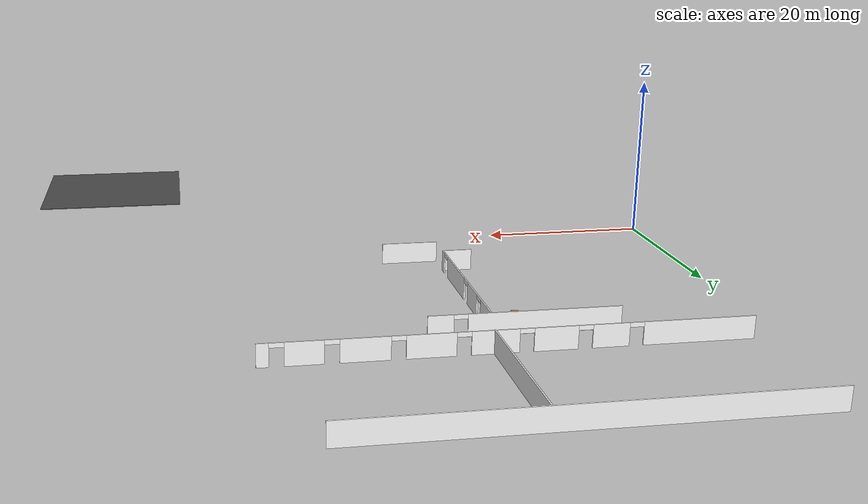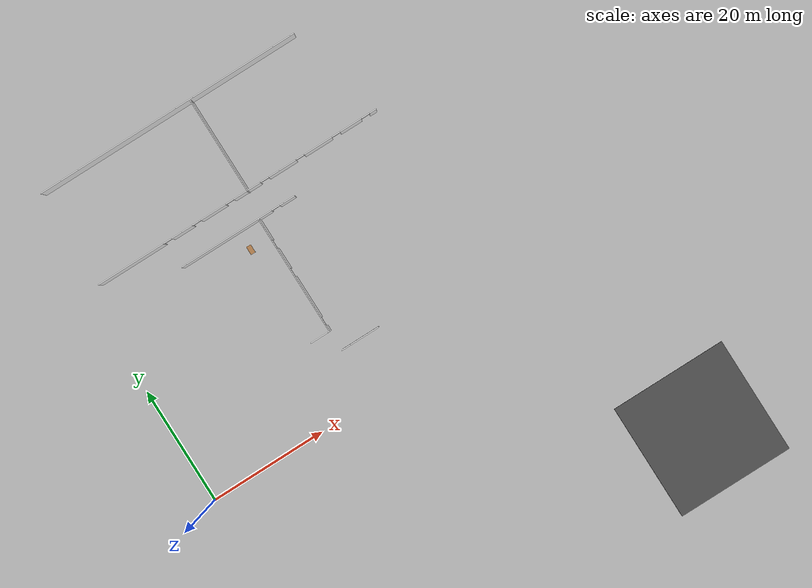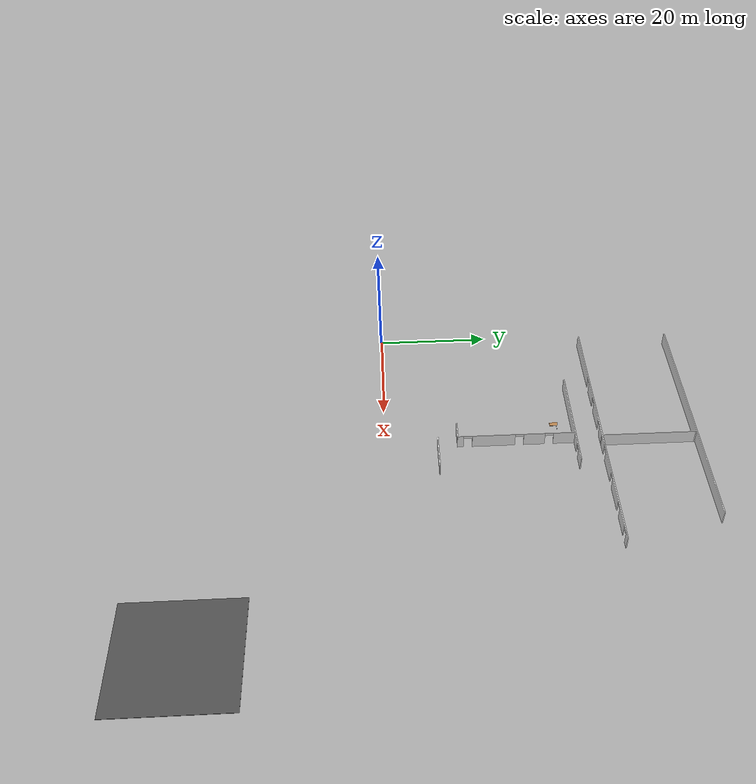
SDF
<sdf version="1.6">
 <world name="default">
  <model name="mainoffice">
   <pose>42.7555 15.4488 0 0 -0 0</pose>
   <link name="Wall_114">
    <pose>-14.0456 22.5815 0 0 -0 0</pose>
    <visual name="Wall_114_Visual_0">
     <pose>-19.5315 0 1.25 0 -0 0</pose>
     <geometry><box><size>11.937 0.15 2.5</size></box></geometry>
     <material>
      <script>
       <uri>model://office_env/materials/scripts</uri>
       <uri>model://office_env/materials/textures</uri>
       <name>wall</name>
      </script>
      <ambient>1 1 1 1</ambient>
     </material>
    </visual>
    <collision name="Wall_114_Collision_0">
     <geometry><box><size>11.937 0.15 2.5</size></box></geometry>
     <pose>-19.5315 0 1.25 0 -0 0</pose>
    </collision>
    <visual name="Wall_114_Visual_1">
     <pose>-10.1461 0 1.25 0 -0 0</pose>
     <geometry><box><size>3.83377 0.15 2.5</size></box></geometry>
     <material>
      <script>
       <uri>model://office_env/materials/scripts</uri>
       <uri>model://office_env/materials/textures</uri>
       <name>wall</name>
      </script>
      <ambient>1 1 1 1</ambient>
     </material>
    </visual>
    <collision name="Wall_114_Collision_1">
     <geometry><box><size>3.83377 0.15 2.5</size></box></geometry>
     <pose>-10.1461 0 1.25 0 -0 0</pose>
    </collision>
    <visual name="Wall_114_Visual_2">
     <pose>-4.44505 0 1.25 0 -0 0</pose>
     <geometry><box><size>4.56834 0.15 2.5</size></box></geometry>
     <material>
      <script>
       <uri>model://office_env/materials/scripts</uri>
       <uri>model://office_env/materials/textures</uri>
       <name>wall</name>
      </script>
      <ambient>1 1 1 1</ambient>
     </material>
    </visual>
    <collision name="Wall_114_Collision_2">
     <geometry><box><size>4.56834 0.15 2.5</size></box></geometry>
     <pose>-4.44505 0 1.25 0 -0 0</pose>
    </collision>
    <visual name="Wall_114_Visual_3">
     <pose>1.7851 0 1.25 0 -0 0</pose>
     <geometry><box><size>4.89198 0.15 2.5</size></box></geometry>
     <material>
      <script>
       <uri>model://office_env/materials/scripts</uri>
       <uri>model://office_env/materials/textures</uri>
       <name>wall</name>
      </script>
      <ambient>1 1 1 1</ambient>
     </material>
    </visual>
    <collision name="Wall_114_Collision_3">
     <geometry><box><size>4.89198 0.15 2.5</size></box></geometry>
     <pose>1.7851 0 1.25 0 -0 0</pose>
    </collision>
    <visual name="Wall_114_Visual_4">
     <pose>8.258 0 1.25 0 -0 0</pose>
     <geometry><box><size>5.0538 0.15 2.5</size></box></geometry>
     <material>
      <script>
       <uri>model://office_env/materials/scripts</uri>
       <uri>model://office_env/materials/textures</uri>
       <name>wall</name>
      </script>
      <ambient>1 1 1 1</ambient>
     </material>
    </visual>
    <collision name="Wall_114_Collision_4">
     <geometry><box><size>5.0538 0.15 2.5</size></box></geometry>
     <pose>8.258 0 1.25 0 -0 0</pose>
    </collision>
    <visual name="Wall_114_Visual_5">
     <pose>14.8201 0 1.25 0 -0 0</pose>
     <geometry><box><size>5.07045 0.15 2.5</size></box></geometry>
     <material>
      <script>
       <uri>model://office_env/materials/scripts</uri>
       <uri>model://office_env/materials/textures</uri>
       <name>wall</name>
      </script>
      <ambient>1 1 1 1</ambient>
     </material>
    </visual>
    <collision name="Wall_114_Collision_5">
     <geometry><box><size>5.07045 0.15 2.5</size></box></geometry>
     <pose>14.8201 0 1.25 0 -0 0</pose>
    </collision>
    <visual name="Wall_114_Visual_6">
     <pose>20.8037 0 1.25 0 -0 0</pose>
     <geometry><box><size>3.89677 0.15 2.5</size></box></geometry>
     <material>
      <script>
       <uri>model://office_env/materials/scripts</uri>
       <uri>model://office_env/materials/textures</uri>
       <name>wall</name>
      </script>
      <ambient>1 1 1 1</ambient>
     </material>
    </visual>
    <collision name="Wall_114_Collision_6">
     <geometry><box><size>3.89677 0.15 2.5</size></box></geometry>
     <pose>20.8037 0 1.25 0 -0 0</pose>
    </collision>
    <visual name="Wall_114_Visual_7">
     <pose>24.8761 0 1.25 0 -0 0</pose>
     <geometry><box><size>1.24787 0.15 2.5</size></box></geometry>
     <material>
      <script>
       <uri>model://office_env/materials/scripts</uri>
       <uri>model://office_env/materials/textures</uri>
       <name>wall</name>
      </script>
      <ambient>1 1 1 1</ambient>
     </material>
    </visual>
    <collision name="Wall_114_Collision_7">
     <geometry><box><size>1.24787 0.15 2.5</size></box></geometry>
     <pose>24.8761 0 1.25 0 -0 0</pose>
    </collision>
    <visual name="Wall_114_Visual_8">
     <pose>-12.813 0 2.25 0 -0 0</pose>
     <geometry><box><size>1.5 0.15 0.5</size></box></geometry>
     <material>
      <script>
       <uri>model://office_env/materials/scripts</uri>
       <uri>model://office_env/materials/textures</uri>
       <name>wall</name>
      </script>
      <ambient>1 1 1 1</ambient>
     </material>
    </visual>
    <collision name="Wall_114_Collision_8">
     <geometry><box><size>1.5 0.15 0.5</size></box></geometry>
     <pose>-12.813 0 2.25 0 -0 0</pose>
    </collision>
    <visual name="Wall_114_Visual_9">
     <pose>-7.47922 0 2.25 0 -0 0</pose>
     <geometry><box><size>1.5 0.15 0.5</size></box></geometry>
     <material>
      <script>
       <uri>model://office_env/materials/scripts</uri>
       <uri>model://office_env/materials/textures</uri>
       <name>wall</name>
      </script>
      <ambient>1 1 1 1</ambient>
     </material>
    </visual>
    <collision name="Wall_114_Collision_9">
     <geometry><box><size>1.5 0.15 0.5</size></box></geometry>
     <pose>-7.47922 0 2.25 0 -0 0</pose>
    </collision>
    <visual name="Wall_114_Visual_10">
     <pose>-1.41089 0 2.25 0 -0 0</pose>
     <geometry><box><size>1.5 0.15 0.5</size></box></geometry>
     <material>
      <script>
       <uri>model://office_env/materials/scripts</uri>
       <uri>model://office_env/materials/textures</uri>
       <name>wall</name>
      </script>
      <ambient>1 1 1 1</ambient>
     </material>
    </visual>
    <collision name="Wall_114_Collision_10">
     <geometry><box><size>1.5 0.15 0.5</size></box></geometry>
     <pose>-1.41089 0 2.25 0 -0 0</pose>
    </collision>
    <visual name="Wall_114_Visual_11">
     <pose>4.98109 0 2.25 0 -0 0</pose>
     <geometry><box><size>1.5 0.15 0.5</size></box></geometry>
     <material>
      <script>
       <uri>model://office_env/materials/scripts</uri>
       <uri>model://office_env/materials/textures</uri>
       <name>wall</name>
      </script>
      <ambient>1 1 1 1</ambient>
     </material>
    </visual>
    <collision name="Wall_114_Collision_11">
     <geometry><box><size>1.5 0.15 0.5</size></box></geometry>
     <pose>4.98109 0 2.25 0 -0 0</pose>
    </collision>
    <visual name="Wall_114_Visual_12">
     <pose>11.5349 0 2.25 0 -0 0</pose>
     <geometry><box><size>1.5 0.15 0.5</size></box></geometry>
     <material>
      <script>
       <uri>model://office_env/materials/scripts</uri>
       <uri>model://office_env/materials/textures</uri>
       <name>wall</name>
      </script>
      <ambient>1 1 1 1</ambient>
     </material>
    </visual>
    <collision name="Wall_114_Collision_12">
     <geometry><box><size>1.5 0.15 0.5</size></box></geometry>
     <pose>11.5349 0 2.25 0 -0 0</pose>
    </collision>
    <visual name="Wall_114_Visual_13">
     <pose>18.1054 0 2.25 0 -0 0</pose>
     <geometry><box><size>1.5 0.15 0.5</size></box></geometry>
     <material>
      <script>
       <uri>model://office_env/materials/scripts</uri>
       <uri>model://office_env/materials/textures</uri>
       <name>wall</name>
      </script>
      <ambient>1 1 1 1</ambient>
     </material>
    </visual>
    <collision name="Wall_114_Collision_13">
     <geometry><box><size>1.5 0.15 0.5</size></box></geometry>
     <pose>18.1054 0 2.25 0 -0 0</pose>
    </collision>
    <visual name="Wall_114_Visual_14">
     <pose>23.5021 0 2.25 0 -0 0</pose>
     <geometry><box><size>1.5 0.15 0.5</size></box></geometry>
     <material>
      <script>
       <uri>model://office_env/materials/scripts</uri>
       <uri>model://office_env/materials/textures</uri>
       <name>wall</name>
      </script>
      <ambient>1 1 1 1</ambient>
     </material>
    </visual>
    <collision name="Wall_114_Collision_14">
     <geometry><box><size>1.5 0.15 0.5</size></box></geometry>
     <pose>23.5021 0 2.25 0 -0 0</pose>
    </collision>
   </link>
   <link name="Wall_140">
    <collision name="Wall_140_Collision">
     <geometry><box><size>16.75 0.15 2.5</size></box></geometry>
     <pose>0 0 1.25 0 -0 0</pose>
    </collision>
    <visual name="Wall_140_Visual">
     <pose>0 0 1.25 0 -0 0</pose>
     <geometry><box><size>16.75 0.15 2.5</size></box></geometry>
     <material>
      <script>
       <uri>model://office_env/materials/scripts</uri>
       <uri>model://office_env/materials/textures</uri>
       <name>wall</name>
      </script>
      <ambient>1 1 1 1</ambient>
     </material>
    </visual>
    <pose>-12.1935 30.816 0 0 -0 1.5708</pose>
   </link>
   <link name="Wall_141">
    <collision name="Wall_141_Collision">
     <geometry><box><size>0.25 0.15 2.5</size></box></geometry>
     <pose>0 0 1.25 0 -0 0</pose>
    </collision>
    <visual name="Wall_141_Visual">
     <pose>0 0 1.25 0 -0 0</pose>
     <geometry><box><size>0.25 0.15 2.5</size></box></geometry>
     <material>
      <script>
       <uri>model://office_env/materials/scripts</uri>
       <uri>model://office_env/materials/textures</uri>
       <name>wall</name>
      </script>
      <ambient>1 1 1 1</ambient>
     </material>
    </visual>
    <pose>-12.1935 39.166 0 0 -0 1.5708</pose>
   </link>
   <link name="Wall_38">
    <collision name="Wall_38_Collision">
     <geometry><box><size>46.5 0.15 2.5</size></box></geometry>
     <pose>0 0 1.25 0 -0 0</pose>
    </collision>
    <visual name="Wall_38_Visual">
     <pose>0 0 1.25 0 -0 0</pose>
     <geometry><box><size>46.5 0.15 2.5</size></box></geometry>
     <material>
      <script>
       <uri>model://office_env/materials/scripts</uri>
       <uri>model://office_env/materials/textures</uri>
       <name>wall</name>
      </script>
      <ambient>1 1 1 1</ambient>
     </material>
    </visual>
    <pose>-16.2741 39.325 0 0 -0 0</pose>
   </link>
   <link name="Wall_75">
    <pose>-16.7991 17.975 0 0 -0 0</pose>
    <visual name="Wall_75_Visual_0">
     <pose>-2.1273 0 1.25 0 -0 0</pose>
     <geometry><box><size>16.4954 0.15 2.5</size></box></geometry>
     <material>
      <script>
       <uri>model://office_env/materials/scripts</uri>
       <uri>model://office_env/materials/textures</uri>
       <name>wall</name>
      </script>
      <ambient>1 1 1 1</ambient>
     </material>
    </visual>
    <collision name="Wall_75_Collision_0">
     <geometry><box><size>16.4954 0.15 2.5</size></box></geometry>
     <pose>-2.1273 0 1.25 0 -0 0</pose>
    </collision>
    <visual name="Wall_75_Visual_1">
     <pose>8.9977 0 1.25 0 -0 0</pose>
     <geometry><box><size>2.7546 0.15 2.5</size></box></geometry>
     <material>
      <script>
       <uri>model://office_env/materials/scripts</uri>
       <uri>model://office_env/materials/textures</uri>
       <name>wall</name>
      </script>
      <ambient>1 1 1 1</ambient>
     </material>
    </visual>
    <collision name="Wall_75_Collision_1">
     <geometry><box><size>2.7546 0.15 2.5</size></box></geometry>
     <pose>8.9977 0 1.25 0 -0 0</pose>
    </collision>
    <visual name="Wall_75_Visual_2">
     <pose>6.8704 0 2.25 0 -0 0</pose>
     <geometry><box><size>1.5 0.15 0.5</size></box></geometry>
     <material>
      <script>
       <uri>model://office_env/materials/scripts</uri>
       <uri>model://office_env/materials/textures</uri>
       <name>wall</name>
      </script>
      <ambient>1 1 1 1</ambient>
     </material>
    </visual>
    <collision name="Wall_75_Collision_2">
     <geometry><box><size>1.5 0.15 0.5</size></box></geometry>
     <pose>6.8704 0 2.25 0 -0 0</pose>
    </collision>
   </link>
   <link name="Wall_83">
    <collision name="Wall_83_Collision">
     <geometry><box><size>6.75 0.15 2.5</size></box></geometry>
     <pose>0 0 1.25 0 -0 0</pose>
    </collision>
    <visual name="Wall_83_Visual">
     <pose>0 0 1.25 0 -0 0</pose>
     <geometry><box><size>6.75 0.15 2.5</size></box></geometry>
     <material>
      <script>
       <uri>model://office_env/materials/scripts</uri>
       <uri>model://office_env/materials/textures</uri>
       <name>wall</name>
      </script>
      <ambient>1 1 1 1</ambient>
     </material>
    </visual>
    <pose>-9.72161 -6.1975 0 0 -0 0</pose>
   </link>
   <link name="Wall_85">
    <collision name="Wall_85_Collision">
     <geometry><box><size>3.5 0.15 2.5</size></box></geometry>
     <pose>0 0 1.25 0 -0 0</pose>
    </collision>
    <visual name="Wall_85_Visual">
     <pose>0 0 1.25 0 -0 0</pose>
     <geometry><box><size>3.5 0.15 2.5</size></box></geometry>
     <material>
      <script>
       <uri>model://office_env/materials/scripts</uri>
       <uri>model://office_env/materials/textures</uri>
       <name>wall</name>
      </script>
      <ambient>1 1 1 1</ambient>
     </material>
    </visual>
    <pose>-14.7741 -2.675 0 0 -0 0</pose>
   </link>
   <link name="Wall_86">
    <pose>-13.0991 7.625 0 0 -0 1.5708</pose>
    <visual name="Wall_86_Visual_0">
     <pose>-9.82339 0 1.25 0 -0 0</pose>
     <geometry><box><size>1.10323 0.15 2.5</size></box></geometry>
     <material>
      <script>
       <uri>model://office_env/materials/scripts</uri>
       <uri>model://office_env/materials/textures</uri>
       <name>wall</name>
      </script>
      <ambient>1 1 1 1</ambient>
     </material>
    </visual>
    <collision name="Wall_86_Collision_0">
     <geometry><box><size>1.10323 0.15 2.5</size></box></geometry>
     <pose>-9.82339 0 1.25 0 -0 0</pose>
    </collision>
    <visual name="Wall_86_Visual_1">
     <pose>-3.99947 0 1.25 0 -0 0</pose>
     <geometry><box><size>7.5446 0.15 2.5</size></box></geometry>
     <material>
      <script>
       <uri>model://office_env/materials/scripts</uri>
       <uri>model://office_env/materials/textures</uri>
       <name>wall</name>
      </script>
      <ambient>1 1 1 1</ambient>
     </material>
    </visual>
    <collision name="Wall_86_Collision_1">
     <geometry><box><size>7.5446 0.15 2.5</size></box></geometry>
     <pose>-3.99947 0 1.25 0 -0 0</pose>
    </collision>
    <visual name="Wall_86_Visual_2">
     <pose>3.13776 0 1.25 0 -0 0</pose>
     <geometry><box><size>3.72987 0.15 2.5</size></box></geometry>
     <material>
      <script>
       <uri>model://office_env/materials/scripts</uri>
       <uri>model://office_env/materials/textures</uri>
       <name>wall</name>
      </script>
      <ambient>1 1 1 1</ambient>
     </material>
    </visual>
    <collision name="Wall_86_Collision_2">
     <geometry><box><size>3.72987 0.15 2.5</size></box></geometry>
     <pose>3.13776 0 1.25 0 -0 0</pose>
    </collision>
    <visual name="Wall_86_Visual_3">
     <pose>8.43885 0 1.25 0 -0 0</pose>
     <geometry><box><size>3.8723 0.15 2.5</size></box></geometry>
     <material>
      <script>
       <uri>model://office_env/materials/scripts</uri>
       <uri>model://office_env/materials/textures</uri>
       <name>wall</name>
      </script>
      <ambient>1 1 1 1</ambient>
     </material>
    </visual>
    <collision name="Wall_86_Collision_3">
     <geometry><box><size>3.8723 0.15 2.5</size></box></geometry>
     <pose>8.43885 0 1.25 0 -0 0</pose>
    </collision>
    <visual name="Wall_86_Visual_4">
     <pose>-8.52177 0 2.25 0 -0 0</pose>
     <geometry><box><size>1.5 0.15 0.5</size></box></geometry>
     <material>
      <script>
       <uri>model://office_env/materials/scripts</uri>
       <uri>model://office_env/materials/textures</uri>
       <name>wall</name>
      </script>
      <ambient>1 1 1 1</ambient>
     </material>
    </visual>
    <collision name="Wall_86_Collision_4">
     <geometry><box><size>1.5 0.15 0.5</size></box></geometry>
     <pose>-8.52177 0 2.25 0 -0 0</pose>
    </collision>
    <visual name="Wall_86_Visual_5">
     <pose>0.522826 0 2.25 0 -0 0</pose>
     <geometry><box><size>1.5 0.15 0.5</size></box></geometry>
     <material>
      <script>
       <uri>model://office_env/materials/scripts</uri>
       <uri>model://office_env/materials/textures</uri>
       <name>wall</name>
      </script>
      <ambient>1 1 1 1</ambient>
     </material>
    </visual>
    <collision name="Wall_86_Collision_5">
     <geometry><box><size>1.5 0.15 0.5</size></box></geometry>
     <pose>0.522826 0 2.25 0 -0 0</pose>
    </collision>
    <visual name="Wall_86_Visual_6">
     <pose>5.7527 0 2.25 0 -0 0</pose>
     <geometry><box><size>1.5 0.15 0.5</size></box></geometry>
     <material>
      <script>
       <uri>model://office_env/materials/scripts</uri>
       <uri>model://office_env/materials/textures</uri>
       <name>wall</name>
      </script>
      <ambient>1 1 1 1</ambient>
     </material>
    </visual>
    <collision name="Wall_86_Collision_6">
     <geometry><box><size>1.5 0.15 0.5</size></box></geometry>
     <pose>5.7527 0 2.25 0 -0 0</pose>
    </collision>
   </link>
   <static>1</static>
  </model>
  <model name="asphalt_plane">
   <static>1</static>
   <link name="link">
    <collision name="collision"><geometry><box><size>20 20 0.1</size></box></geometry></collision>
    <visual name="visual">
     <cast_shadows>0</cast_shadows>
     <geometry><box><size>20 20 0.1</size></box></geometry>
     <material>
      <script>
       <uri>model://asphalt_plane/materials/scripts</uri>
       <uri>model://asphalt_plane/materials/textures</uri>
       <name>vrc/asphalt</name>
      </script>
     </material>
    </visual>
   </link>
   <pose>70.7475 -31.5972 0 0 -0 0</pose>
  </model>
  <model name="table_3_clone_clone_clone_4">
   <static>0</static>
   <link name="link">
    <collision name="surface">
     <pose>0 0 1 0 -0 0</pose>
     <geometry><box><size>1.5 0.8 0.03</size></box></geometry>
     <surface><friction><ode><mu>0.6</mu><mu2>0.6</mu2></ode></friction></surface>
    </collision>
    <visual name="visual1">
     <pose>0 0 1 0 -0 0</pose>
     <geometry><box><size>1.4 0.8 0.04</size></box></geometry>
     <material>
      <script><uri>file://media/materials/scripts/gazebo.material</uri><name>Gazebo/Wood</name></script>
     </material>
    </visual>
    <collision name="front_left_leg">
     <pose>0.68 0.38 0.5 0 -0 0</pose>
     <geometry><cylinder><radius>0.02</radius><length>1</length></cylinder></geometry>
    </collision>
    <visual name="front_left_leg">
     <pose>0.68 0.38 0.5 0 -0 0</pose>
     <geometry><cylinder><radius>0.02</radius><length>1</length></cylinder></geometry>
     <material>
      <script>
       <uri>model://office_env/materials/scripts</uri>
       <uri>model://office_env/materials/textures</uri>
       <name>wall</name>
      </script>
     </material>
    </visual>
    <collision name="front_right_leg">
     <pose>0.68 -0.38 0.5 0 -0 0</pose>
     <geometry><cylinder><radius>0.02</radius><length>1</length></cylinder></geometry>
    </collision>
    <visual name="front_right_leg">
     <pose>0.68 -0.38 0.5 0 -0 0</pose>
     <geometry><cylinder><radius>0.02</radius><length>1</length></cylinder></geometry>
     <material>
      <script>
       <uri>model://office_env/materials/scripts</uri>
       <uri>model://office_env/materials/textures</uri>
       <name>wall</name>
      </script>
     </material>
    </visual>
    <collision name="back_right_leg">
     <pose>-0.68 -0.38 0.5 0 -0 0</pose>
     <geometry><cylinder><radius>0.02</radius><length>1</length></cylinder></geometry>
    </collision>
    <visual name="back_right_leg">
     <pose>-0.68 -0.38 0.5 0 -0 0</pose>
     <geometry><cylinder><radius>0.02</radius><length>1</length></cylinder></geometry>
     <material>
      <script>
       <uri>model://office_env/materials/scripts</uri>
       <uri>model://office_env/materials/textures</uri>
       <name>wall</name>
      </script>
     </material>
    </visual>
    <collision name="back_left_leg">
     <pose>-0.68 0.38 0.5 0 -0 0</pose>
     <geometry><cylinder><radius>0.02</radius><length>1</length></cylinder></geometry>
    </collision>
    <visual name="back_left_leg">
     <pose>-0.68 0.38 0.5 0 -0 0</pose>
     <geometry><cylinder><radius>0.02</radius><length>1</length></cylinder></geometry>
     <material>
      <script>
       <uri>model://office_env/materials/scripts</uri>
       <uri>model://office_env/materials/textures</uri>
       <name>wall</name>
      </script>
     </material>
    </visual>
    <inertial>
     <inertia><ixx>1</ixx><ixy>0</ixy><ixz>0</ixz><iyy>1</iyy><iyz>0</iyz><izz>1</izz></inertia>
     <mass>1</mass>
    </inertial>
   </link>
   <pose>25.9412 30.1477 0.034999 0 0 -1.58064</pose>
  </model>
 </world>
</sdf>
